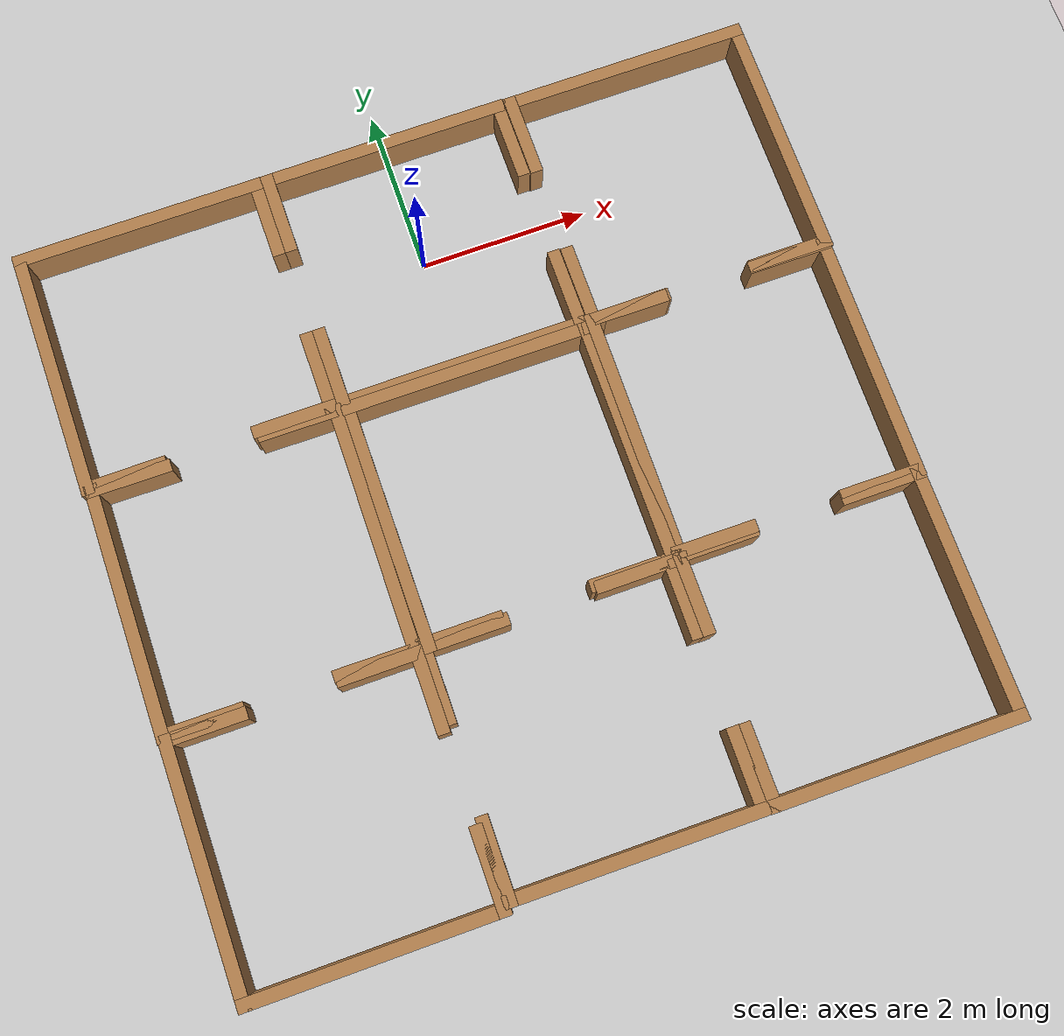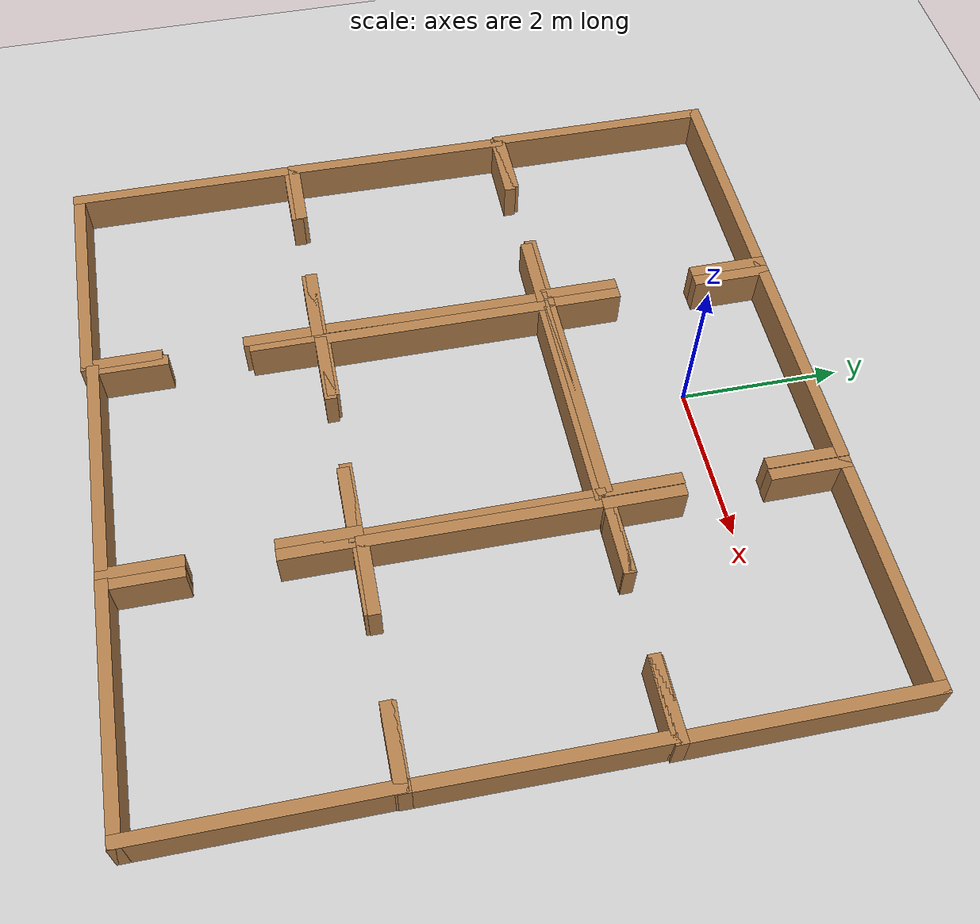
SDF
<sdf version="1.7">
 <world name="default">
  <light name="sun" type="directional">
   <pose>0 0 10 0 -0 0</pose>
   <diffuse>0.8 0.8 0.8 1</diffuse>
   <specular>0.2 0.2 0.2 1</specular>
   <attenuation>
    <range>1000</range>
    <constant>0.9</constant>
    <linear>0.01</linear>
    <quadratic>0.001</quadratic>
   </attenuation>
   <direction>-0.5 0.1 -0.9</direction>
   <spot><inner_angle>0</inner_angle><outer_angle>0</outer_angle><falloff>0</falloff></spot>
  </light>
  <model name="ground_plane">
   <static>1</static>
   <link name="link">
    <collision name="collision">
     <geometry><plane><normal>0 0 1</normal><size>100 100</size></plane></geometry>
     <surface>
      <contact><collide_bitmask>65535</collide_bitmask></contact>
      <friction><ode><mu>100</mu><mu2>50</mu2></ode></friction>
     </surface>
    </collision>
    <visual name="visual">
     <cast_shadows>0</cast_shadows>
     <geometry><plane><normal>0 0 1</normal><size>100 100</size></plane></geometry>
     <material>
      <script><uri>file://media/materials/scripts/gazebo.material</uri><name>Gazebo/Grey</name></script>
     </material>
    </visual>
   </link>
  </model>
  <physics type="ode">
   <real_time_update_rate>1000</real_time_update_rate>
   <max_step_size>0.001</max_step_size>
   <real_time_factor>1</real_time_factor>
   <ode>
    <solver>
     <type>quick</type>
     <iters>150</iters>
     <precon_iters>0</precon_iters>
     <sor>1.4</sor>
     <use_dynamic_moi_rescaling>1</use_dynamic_moi_rescaling>
    </solver>
    <constraints>
     <cfm>1e-05</cfm>
     <erp>0.2</erp>
     <contact_max_correcting_vel>2000</contact_max_correcting_vel>
     <contact_surface_layer>0.01</contact_surface_layer>
    </constraints>
   </ode>
  </physics>
  <model name="s_0_0">
   <link name="Wall_0">
    <collision name="Wall_0_Collision">
     <geometry><box><size>3 0.15 0.5</size></box></geometry>
     <pose>0 0 0.25 0 -0 0</pose>
    </collision>
    <visual name="Wall_0_Visual">
     <pose>0 0 0.25 0 -0 0</pose>
     <geometry><box><size>3 0.15 0.5</size></box></geometry>
     <material>
      <script><uri>file://media/materials/scripts/gazebo.material</uri><name>Gazebo/Wood</name></script>
      <ambient>1 1 1 1</ambient>
     </material>
    </visual>
    <pose>0 1.425 0 0 -0 0</pose>
   </link>
   <link name="Wall_2">
    <collision name="Wall_2_Collision">
     <geometry><box><size>1 0.15 0.5</size></box></geometry>
     <pose>0 0 0.25 0 -0 0</pose>
    </collision>
    <visual name="Wall_2_Visual">
     <pose>0 0 0.25 0 -0 0</pose>
     <geometry><box><size>1 0.15 0.5</size></box></geometry>
     <material>
      <script><uri>file://media/materials/scripts/gazebo.material</uri><name>Gazebo/Wood</name></script>
      <ambient>1 1 1 1</ambient>
     </material>
    </visual>
    <pose>-1.425 -1 0 0 0 -1.5708</pose>
   </link>
   <link name="Wall_2a">
    <collision name="Wall_2a_Collision">
     <geometry><box><size>1 0.15 0.5</size></box></geometry>
     <pose>0 0 0.25 0 -0 0</pose>
    </collision>
    <visual name="Wall_2a_Visual">
     <pose>0 0 0.25 0 -0 0</pose>
     <geometry><box><size>1 0.15 0.5</size></box></geometry>
     <material>
      <script><uri>file://media/materials/scripts/gazebo.material</uri><name>Gazebo/Wood</name></script>
      <ambient>1 1 1 1</ambient>
     </material>
    </visual>
    <pose>-1.425 1 0 0 0 -1.5708</pose>
   </link>
   <link name="Wall_3">
    <collision name="Wall_3_Collision">
     <geometry><box><size>3 0.15 0.5</size></box></geometry>
     <pose>0 0 0.25 0 -0 0</pose>
    </collision>
    <visual name="Wall_3_Visual">
     <pose>0 0 0.25 0 -0 0</pose>
     <geometry><box><size>3 0.15 0.5</size></box></geometry>
     <material>
      <script><uri>file://media/materials/scripts/gazebo.material</uri><name>Gazebo/Wood</name></script>
      <ambient>1 1 1 1</ambient>
     </material>
    </visual>
    <pose>0 -1.425 0 0 -0 0</pose>
   </link>
   <link name="Wall_4">
    <collision name="Wall_4_Collision">
     <geometry><box><size>1 0.15 0.5</size></box></geometry>
     <pose>0 0 0.25 0 -0 0</pose>
    </collision>
    <visual name="Wall_4_Visual">
     <pose>0 0 0.25 0 -0 0</pose>
     <geometry><box><size>1 0.15 0.5</size></box></geometry>
     <material>
      <script><uri>file://media/materials/scripts/gazebo.material</uri><name>Gazebo/Wood</name></script>
      <ambient>1 1 1 1</ambient>
     </material>
    </visual>
    <pose>1.425 -1 0 0 -0 1.5708</pose>
   </link>
   <link name="Wall_4a">
    <collision name="Wall_4a_Collision">
     <geometry><box><size>1 0.15 0.5</size></box></geometry>
     <pose>0 0 0.25 0 -0 0</pose>
    </collision>
    <visual name="Wall_4a_Visual">
     <pose>0 0 0.25 0 -0 0</pose>
     <geometry><box><size>1 0.15 0.5</size></box></geometry>
     <material>
      <script><uri>file://media/materials/scripts/gazebo.material</uri><name>Gazebo/Wood</name></script>
      <ambient>1 1 1 1</ambient>
     </material>
    </visual>
    <pose>1.425 1 0 0 -0 1.5708</pose>
   </link>
   <static>1</static>
  </model>
  <model name="s_6_0">
   <pose>3.00646 -0.009727 0 0 -0 3.14159</pose>
   <link name="Wall_0">
    <collision name="Wall_0_Collision">
     <geometry><box><size>1 0.15 0.5</size></box></geometry>
     <pose>0 0 0.25 0 -0 0</pose>
    </collision>
    <visual name="Wall_0_Visual">
     <pose>0 0 0.25 0 -0 0</pose>
     <geometry><box><size>1 0.15 0.5</size></box></geometry>
     <material>
      <script><uri>file://media/materials/scripts/gazebo.material</uri><name>Gazebo/Wood</name></script>
      <ambient>1 1 1 1</ambient>
     </material>
    </visual>
    <pose>-1 1.425 0 0 -0 0</pose>
   </link>
   <link name="Wall_0a">
    <collision name="Wall_0a_Collision">
     <geometry><box><size>1 0.15 0.5</size></box></geometry>
     <pose>0 0 0.25 0 -0 0</pose>
    </collision>
    <visual name="Wall_0a_Visual">
     <pose>0 0 0.25 0 -0 0</pose>
     <geometry><box><size>1 0.15 0.5</size></box></geometry>
     <material>
      <script><uri>file://media/materials/scripts/gazebo.material</uri><name>Gazebo/Wood</name></script>
      <ambient>1 1 1 1</ambient>
     </material>
    </visual>
    <pose>1 1.425 0 0 -0 0</pose>
   </link>
   <link name="Wall_2">
    <collision name="Wall_2_Collision">
     <geometry><box><size>3 0.15 0.5</size></box></geometry>
     <pose>0 0 0.25 0 -0 0</pose>
    </collision>
    <visual name="Wall_2_Visual">
     <pose>0 0 0.25 0 -0 0</pose>
     <geometry><box><size>3 0.15 0.5</size></box></geometry>
     <material>
      <script><uri>file://media/materials/scripts/gazebo.material</uri><name>Gazebo/Wood</name></script>
      <ambient>1 1 1 1</ambient>
     </material>
    </visual>
    <pose>-1.425 0 0 0 0 -1.5708</pose>
   </link>
   <link name="Wall_3">
    <collision name="Wall_3_Collision">
     <geometry><box><size>3 0.15 0.5</size></box></geometry>
     <pose>0 0 0.25 0 -0 0</pose>
    </collision>
    <visual name="Wall_3_Visual">
     <pose>0 0 0.25 0 -0 0</pose>
     <geometry><box><size>3 0.15 0.5</size></box></geometry>
     <material>
      <script><uri>file://media/materials/scripts/gazebo.material</uri><name>Gazebo/Wood</name></script>
      <ambient>1 1 1 1</ambient>
     </material>
    </visual>
    <pose>0 -1.425 0 0 -0 0</pose>
   </link>
   <link name="Wall_4">
    <collision name="Wall_4_Collision">
     <geometry><box><size>1 0.15 0.5</size></box></geometry>
     <pose>0 0 0.25 0 -0 0</pose>
    </collision>
    <visual name="Wall_4_Visual">
     <pose>0 0 0.25 0 -0 0</pose>
     <geometry><box><size>1 0.15 0.5</size></box></geometry>
     <material>
      <script><uri>file://media/materials/scripts/gazebo.material</uri><name>Gazebo/Wood</name></script>
      <ambient>1 1 1 1</ambient>
     </material>
    </visual>
    <pose>1.425 -1 0 0 -0 1.5708</pose>
   </link>
   <link name="Wall_4a">
    <collision name="Wall_4a_Collision">
     <geometry><box><size>1 0.15 0.5</size></box></geometry>
     <pose>0 0 0.25 0 -0 0</pose>
    </collision>
    <visual name="Wall_4a_Visual">
     <pose>0 0 0.25 0 -0 0</pose>
     <geometry><box><size>1 0.15 0.5</size></box></geometry>
     <material>
      <script><uri>file://media/materials/scripts/gazebo.material</uri><name>Gazebo/Wood</name></script>
      <ambient>1 1 1 1</ambient>
     </material>
    </visual>
    <pose>1.425 1 0 0 -0 1.5708</pose>
   </link>
   <static>1</static>
  </model>
  <model name="s_6_n9">
   <pose>2.94913 -5.75412 0 0 -0 1.5708</pose>
   <link name="Wall_0">
    <collision name="Wall_0_Collision">
     <geometry><box><size>1 0.15 0.5</size></box></geometry>
     <pose>0 0 0.25 0 -0 0</pose>
    </collision>
    <visual name="Wall_0_Visual">
     <pose>0 0 0.25 0 -0 0</pose>
     <geometry><box><size>1 0.15 0.5</size></box></geometry>
     <material>
      <script><uri>file://media/materials/scripts/gazebo.material</uri><name>Gazebo/Wood</name></script>
      <ambient>1 1 1 1</ambient>
     </material>
    </visual>
    <pose>-1 1.425 0 0 -0 0</pose>
   </link>
   <link name="Wall_0a">
    <collision name="Wall_0a_Collision">
     <geometry><box><size>1 0.15 0.5</size></box></geometry>
     <pose>0 0 0.25 0 -0 0</pose>
    </collision>
    <visual name="Wall_0a_Visual">
     <pose>0 0 0.25 0 -0 0</pose>
     <geometry><box><size>1 0.15 0.5</size></box></geometry>
     <material>
      <script><uri>file://media/materials/scripts/gazebo.material</uri><name>Gazebo/Wood</name></script>
      <ambient>1 1 1 1</ambient>
     </material>
    </visual>
    <pose>1 1.425 0 0 -0 0</pose>
   </link>
   <link name="Wall_2">
    <collision name="Wall_2_Collision">
     <geometry><box><size>3 0.15 0.5</size></box></geometry>
     <pose>0 0 0.25 0 -0 0</pose>
    </collision>
    <visual name="Wall_2_Visual">
     <pose>0 0 0.25 0 -0 0</pose>
     <geometry><box><size>3 0.15 0.5</size></box></geometry>
     <material>
      <script><uri>file://media/materials/scripts/gazebo.material</uri><name>Gazebo/Wood</name></script>
      <ambient>1 1 1 1</ambient>
     </material>
    </visual>
    <pose>-1.425 0 0 0 0 -1.5708</pose>
   </link>
   <link name="Wall_3">
    <collision name="Wall_3_Collision">
     <geometry><box><size>3 0.15 0.5</size></box></geometry>
     <pose>0 0 0.25 0 -0 0</pose>
    </collision>
    <visual name="Wall_3_Visual">
     <pose>0 0 0.25 0 -0 0</pose>
     <geometry><box><size>3 0.15 0.5</size></box></geometry>
     <material>
      <script><uri>file://media/materials/scripts/gazebo.material</uri><name>Gazebo/Wood</name></script>
      <ambient>1 1 1 1</ambient>
     </material>
    </visual>
    <pose>0 -1.425 0 0 -0 0</pose>
   </link>
   <link name="Wall_4">
    <collision name="Wall_4_Collision">
     <geometry><box><size>1 0.15 0.5</size></box></geometry>
     <pose>0 0 0.25 0 -0 0</pose>
    </collision>
    <visual name="Wall_4_Visual">
     <pose>0 0 0.25 0 -0 0</pose>
     <geometry><box><size>1 0.15 0.5</size></box></geometry>
     <material>
      <script><uri>file://media/materials/scripts/gazebo.material</uri><name>Gazebo/Wood</name></script>
      <ambient>1 1 1 1</ambient>
     </material>
    </visual>
    <pose>1.425 -1 0 0 -0 1.5708</pose>
   </link>
   <link name="Wall_4a">
    <collision name="Wall_4a_Collision">
     <geometry><box><size>1 0.15 0.5</size></box></geometry>
     <pose>0 0 0.25 0 -0 0</pose>
    </collision>
    <visual name="Wall_4a_Visual">
     <pose>0 0 0.25 0 -0 0</pose>
     <geometry><box><size>1 0.15 0.5</size></box></geometry>
     <material>
      <script><uri>file://media/materials/scripts/gazebo.material</uri><name>Gazebo/Wood</name></script>
      <ambient>1 1 1 1</ambient>
     </material>
    </visual>
    <pose>1.425 1 0 0 -0 1.5708</pose>
   </link>
   <static>1</static>
  </model>
  <model name="s_n3_n9">
   <pose>-2.97298 -5.80374 0 0 -0 0</pose>
   <link name="Wall_0">
    <collision name="Wall_0_Collision">
     <geometry><box><size>1 0.15 0.5</size></box></geometry>
     <pose>0 0 0.25 0 -0 0</pose>
    </collision>
    <visual name="Wall_0_Visual">
     <pose>0 0 0.25 0 -0 0</pose>
     <geometry><box><size>1 0.15 0.5</size></box></geometry>
     <material>
      <script><uri>file://media/materials/scripts/gazebo.material</uri><name>Gazebo/Wood</name></script>
      <ambient>1 1 1 1</ambient>
     </material>
    </visual>
    <pose>-1 1.425 0 0 -0 0</pose>
   </link>
   <link name="Wall_0a">
    <collision name="Wall_0a_Collision">
     <geometry><box><size>1 0.15 0.5</size></box></geometry>
     <pose>0 0 0.25 0 -0 0</pose>
    </collision>
    <visual name="Wall_0a_Visual">
     <pose>0 0 0.25 0 -0 0</pose>
     <geometry><box><size>1 0.15 0.5</size></box></geometry>
     <material>
      <script><uri>file://media/materials/scripts/gazebo.material</uri><name>Gazebo/Wood</name></script>
      <ambient>1 1 1 1</ambient>
     </material>
    </visual>
    <pose>1 1.425 0 0 -0 0</pose>
   </link>
   <link name="Wall_2">
    <collision name="Wall_2_Collision">
     <geometry><box><size>3 0.15 0.5</size></box></geometry>
     <pose>0 0 0.25 0 -0 0</pose>
    </collision>
    <visual name="Wall_2_Visual">
     <pose>0 0 0.25 0 -0 0</pose>
     <geometry><box><size>3 0.15 0.5</size></box></geometry>
     <material>
      <script><uri>file://media/materials/scripts/gazebo.material</uri><name>Gazebo/Wood</name></script>
      <ambient>1 1 1 1</ambient>
     </material>
    </visual>
    <pose>-1.425 0 0 0 0 -1.5708</pose>
   </link>
   <link name="Wall_3">
    <collision name="Wall_3_Collision">
     <geometry><box><size>3 0.15 0.5</size></box></geometry>
     <pose>0 0 0.25 0 -0 0</pose>
    </collision>
    <visual name="Wall_3_Visual">
     <pose>0 0 0.25 0 -0 0</pose>
     <geometry><box><size>3 0.15 0.5</size></box></geometry>
     <material>
      <script><uri>file://media/materials/scripts/gazebo.material</uri><name>Gazebo/Wood</name></script>
      <ambient>1 1 1 1</ambient>
     </material>
    </visual>
    <pose>0 -1.425 0 0 -0 0</pose>
   </link>
   <link name="Wall_4">
    <collision name="Wall_4_Collision">
     <geometry><box><size>1 0.15 0.5</size></box></geometry>
     <pose>0 0 0.25 0 -0 0</pose>
    </collision>
    <visual name="Wall_4_Visual">
     <pose>0 0 0.25 0 -0 0</pose>
     <geometry><box><size>1 0.15 0.5</size></box></geometry>
     <material>
      <script><uri>file://media/materials/scripts/gazebo.material</uri><name>Gazebo/Wood</name></script>
      <ambient>1 1 1 1</ambient>
     </material>
    </visual>
    <pose>1.425 -1 0 0 -0 1.5708</pose>
   </link>
   <link name="Wall_4a">
    <collision name="Wall_4a_Collision">
     <geometry><box><size>1 0.15 0.5</size></box></geometry>
     <pose>0 0 0.25 0 -0 0</pose>
    </collision>
    <visual name="Wall_4a_Visual">
     <pose>0 0 0.25 0 -0 0</pose>
     <geometry><box><size>1 0.15 0.5</size></box></geometry>
     <material>
      <script><uri>file://media/materials/scripts/gazebo.material</uri><name>Gazebo/Wood</name></script>
      <ambient>1 1 1 1</ambient>
     </material>
    </visual>
    <pose>1.425 1 0 0 -0 1.5708</pose>
   </link>
   <static>1</static>
  </model>
  <model name="s_n3_0">
   <pose>-3 5e-06 0 0 0 -1.5708</pose>
   <link name="Wall_0">
    <collision name="Wall_0_Collision">
     <geometry><box><size>1 0.15 0.5</size></box></geometry>
     <pose>0 0 0.25 0 -0 0</pose>
    </collision>
    <visual name="Wall_0_Visual">
     <pose>0 0 0.25 0 -0 0</pose>
     <geometry><box><size>1 0.15 0.5</size></box></geometry>
     <material>
      <script><uri>file://media/materials/scripts/gazebo.material</uri><name>Gazebo/Wood</name></script>
      <ambient>1 1 1 1</ambient>
     </material>
    </visual>
    <pose>-1 1.425 0 0 -0 0</pose>
   </link>
   <link name="Wall_0a">
    <collision name="Wall_0a_Collision">
     <geometry><box><size>1 0.15 0.5</size></box></geometry>
     <pose>0 0 0.25 0 -0 0</pose>
    </collision>
    <visual name="Wall_0a_Visual">
     <pose>0 0 0.25 0 -0 0</pose>
     <geometry><box><size>1 0.15 0.5</size></box></geometry>
     <material>
      <script><uri>file://media/materials/scripts/gazebo.material</uri><name>Gazebo/Wood</name></script>
      <ambient>1 1 1 1</ambient>
     </material>
    </visual>
    <pose>1 1.425 0 0 -0 0</pose>
   </link>
   <link name="Wall_2">
    <collision name="Wall_2_Collision">
     <geometry><box><size>3 0.15 0.5</size></box></geometry>
     <pose>0 0 0.25 0 -0 0</pose>
    </collision>
    <visual name="Wall_2_Visual">
     <pose>0 0 0.25 0 -0 0</pose>
     <geometry><box><size>3 0.15 0.5</size></box></geometry>
     <material>
      <script><uri>file://media/materials/scripts/gazebo.material</uri><name>Gazebo/Wood</name></script>
      <ambient>1 1 1 1</ambient>
     </material>
    </visual>
    <pose>-1.425 0 0 0 0 -1.5708</pose>
   </link>
   <link name="Wall_3">
    <collision name="Wall_3_Collision">
     <geometry><box><size>3 0.15 0.5</size></box></geometry>
     <pose>0 0 0.25 0 -0 0</pose>
    </collision>
    <visual name="Wall_3_Visual">
     <pose>0 0 0.25 0 -0 0</pose>
     <geometry><box><size>3 0.15 0.5</size></box></geometry>
     <material>
      <script><uri>file://media/materials/scripts/gazebo.material</uri><name>Gazebo/Wood</name></script>
      <ambient>1 1 1 1</ambient>
     </material>
    </visual>
    <pose>0 -1.425 0 0 -0 0</pose>
   </link>
   <link name="Wall_4">
    <collision name="Wall_4_Collision">
     <geometry><box><size>1 0.15 0.5</size></box></geometry>
     <pose>0 0 0.25 0 -0 0</pose>
    </collision>
    <visual name="Wall_4_Visual">
     <pose>0 0 0.25 0 -0 0</pose>
     <geometry><box><size>1 0.15 0.5</size></box></geometry>
     <material>
      <script><uri>file://media/materials/scripts/gazebo.material</uri><name>Gazebo/Wood</name></script>
      <ambient>1 1 1 1</ambient>
     </material>
    </visual>
    <pose>1.425 -1 0 0 -0 1.5708</pose>
   </link>
   <link name="Wall_4a">
    <collision name="Wall_4a_Collision">
     <geometry><box><size>1 0.15 0.5</size></box></geometry>
     <pose>0 0 0.25 0 -0 0</pose>
    </collision>
    <visual name="Wall_4a_Visual">
     <pose>0 0 0.25 0 -0 0</pose>
     <geometry><box><size>1 0.15 0.5</size></box></geometry>
     <material>
      <script><uri>file://media/materials/scripts/gazebo.material</uri><name>Gazebo/Wood</name></script>
      <ambient>1 1 1 1</ambient>
     </material>
    </visual>
    <pose>1.425 1 0 0 -0 1.5708</pose>
   </link>
   <static>1</static>
  </model>
  <scene><ambient>0.4 0.4 0.4 1</ambient><background>0.7 0.7 0.7 1</background><shadows>1</shadows></scene>
  <gravity>0 0 -9.8</gravity>
  <magnetic_field>6e-06 2.3e-05 -4.2e-05</magnetic_field>
  <atmosphere type="adiabatic"/>
  <spherical_coordinates>
   <surface_model>EARTH_WGS84</surface_model>
   <latitude_deg>0</latitude_deg>
   <longitude_deg>0</longitude_deg>
   <elevation>0</elevation>
   <heading_deg>0</heading_deg>
  </spherical_coordinates>
  <model name="square_3_d">
   <pose>0.02531 -2.9285 0 0 0 -1.5719</pose>
   <link name="Wall_0">
    <collision name="Wall_0_Collision">
     <geometry><box><size>3 0.15 0.5</size></box></geometry>
     <pose>0 0 0.25 0 -0 0</pose>
    </collision>
    <visual name="Wall_0_Visual">
     <pose>0 0 0.25 0 -0 0</pose>
     <geometry><box><size>3 0.15 0.5</size></box></geometry>
     <material>
      <script><uri>file://media/materials/scripts/gazebo.material</uri><name>Gazebo/Wood</name></script>
      <ambient>1 1 1 1</ambient>
     </material>
    </visual>
    <pose>0 1.425 0 0 -0 0</pose>
   </link>
   <link name="Wall_2">
    <collision name="Wall_2_Collision">
     <geometry><box><size>3 0.15 0.5</size></box></geometry>
     <pose>0 0 0.25 0 -0 0</pose>
    </collision>
    <visual name="Wall_2_Visual">
     <pose>0 0 0.25 0 -0 0</pose>
     <geometry><box><size>3 0.15 0.5</size></box></geometry>
     <material>
      <script><uri>file://media/materials/scripts/gazebo.material</uri><name>Gazebo/Wood</name></script>
      <ambient>1 1 1 1</ambient>
     </material>
    </visual>
    <pose>-1.425 0 0 0 0 -1.5708</pose>
   </link>
   <link name="Wall_3">
    <collision name="Wall_3_Collision">
     <geometry><box><size>3 0.15 0.5</size></box></geometry>
     <pose>0 0 0.25 0 -0 0</pose>
    </collision>
    <visual name="Wall_3_Visual">
     <pose>0 0 0.25 0 -0 0</pose>
     <geometry><box><size>3 0.15 0.5</size></box></geometry>
     <material>
      <script><uri>file://media/materials/scripts/gazebo.material</uri><name>Gazebo/Wood</name></script>
      <ambient>1 1 1 1</ambient>
     </material>
    </visual>
    <pose>0 -1.425 0 0 -0 0</pose>
   </link>
   <link name="Wall_4">
    <collision name="Wall_4_Collision">
     <geometry><box><size>1 0.15 0.5</size></box></geometry>
     <pose>0 0 0.25 0 -0 0</pose>
    </collision>
    <visual name="Wall_4_Visual">
     <pose>0 0 0.25 0 -0 0</pose>
     <geometry><box><size>1 0.15 0.5</size></box></geometry>
     <material>
      <script><uri>file://media/materials/scripts/gazebo.material</uri><name>Gazebo/Wood</name></script>
      <ambient>1 1 1 1</ambient>
     </material>
    </visual>
    <pose>1.425 -1 0 0 -0 1.5708</pose>
   </link>
   <link name="Wall_4a">
    <collision name="Wall_4_Collision">
     <geometry><box><size>1 0.15 0.5</size></box></geometry>
     <pose>0 0 0.25 0 -0 0</pose>
    </collision>
    <visual name="Wall_4a_Visual">
     <pose>0 0 0.25 0 -0 0</pose>
     <geometry><box><size>1 0.15 0.5</size></box></geometry>
     <material>
      <script><uri>file://media/materials/scripts/gazebo.material</uri><name>Gazebo/Wood</name></script>
      <ambient>1 1 1 1</ambient>
     </material>
    </visual>
    <pose>1.425 1 0 0 -0 1.5708</pose>
   </link>
   <static>1</static>
  </model>
  <model name="s_0_0_clone">
   <pose>2.97003 -2.86922 0 0 0 -1.57826</pose>
   <link name="Wall_0">
    <collision name="Wall_0_Collision">
     <geometry><box><size>3 0.15 0.5</size></box></geometry>
     <pose>0 0 0.25 0 -0 0</pose>
    </collision>
    <visual name="Wall_0_Visual">
     <pose>0 0 0.25 0 -0 0</pose>
     <geometry><box><size>3 0.15 0.5</size></box></geometry>
     <material>
      <script><uri>file://media/materials/scripts/gazebo.material</uri><name>Gazebo/Wood</name></script>
      <ambient>1 1 1 1</ambient>
     </material>
    </visual>
    <pose>0 1.425 0 0 -0 0</pose>
   </link>
   <link name="Wall_2">
    <collision name="Wall_2_Collision">
     <geometry><box><size>1 0.15 0.5</size></box></geometry>
     <pose>0 0 0.25 0 -0 0</pose>
    </collision>
    <visual name="Wall_2_Visual">
     <pose>0 0 0.25 0 -0 0</pose>
     <geometry><box><size>1 0.15 0.5</size></box></geometry>
     <material>
      <script><uri>file://media/materials/scripts/gazebo.material</uri><name>Gazebo/Wood</name></script>
      <ambient>1 1 1 1</ambient>
     </material>
    </visual>
    <pose>-1.425 -1 0 0 0 -1.5708</pose>
   </link>
   <link name="Wall_2a">
    <collision name="Wall_2a_Collision">
     <geometry><box><size>1 0.15 0.5</size></box></geometry>
     <pose>0 0 0.25 0 -0 0</pose>
    </collision>
    <visual name="Wall_2a_Visual">
     <pose>0 0 0.25 0 -0 0</pose>
     <geometry><box><size>1 0.15 0.5</size></box></geometry>
     <material>
      <script><uri>file://media/materials/scripts/gazebo.material</uri><name>Gazebo/Wood</name></script>
      <ambient>1 1 1 1</ambient>
     </material>
    </visual>
    <pose>-1.425 1 0 0 0 -1.5708</pose>
   </link>
   <link name="Wall_3">
    <collision name="Wall_3_Collision">
     <geometry><box><size>3 0.15 0.5</size></box></geometry>
     <pose>0 0 0.25 0 -0 0</pose>
    </collision>
    <visual name="Wall_3_Visual">
     <pose>0 0 0.25 0 -0 0</pose>
     <geometry><box><size>3 0.15 0.5</size></box></geometry>
     <material>
      <script><uri>file://media/materials/scripts/gazebo.material</uri><name>Gazebo/Wood</name></script>
      <ambient>1 1 1 1</ambient>
     </material>
    </visual>
    <pose>0 -1.425 0 0 -0 0</pose>
   </link>
   <link name="Wall_4">
    <collision name="Wall_4_Collision">
     <geometry><box><size>1 0.15 0.5</size></box></geometry>
     <pose>0 0 0.25 0 -0 0</pose>
    </collision>
    <visual name="Wall_4_Visual">
     <pose>0 0 0.25 0 -0 0</pose>
     <geometry><box><size>1 0.15 0.5</size></box></geometry>
     <material>
      <script><uri>file://media/materials/scripts/gazebo.material</uri><name>Gazebo/Wood</name></script>
      <ambient>1 1 1 1</ambient>
     </material>
    </visual>
    <pose>1.425 -1 0 0 -0 1.5708</pose>
   </link>
   <link name="Wall_4a">
    <collision name="Wall_4a_Collision">
     <geometry><box><size>1 0.15 0.5</size></box></geometry>
     <pose>0 0 0.25 0 -0 0</pose>
    </collision>
    <visual name="Wall_4a_Visual">
     <pose>0 0 0.25 0 -0 0</pose>
     <geometry><box><size>1 0.15 0.5</size></box></geometry>
     <material>
      <script><uri>file://media/materials/scripts/gazebo.material</uri><name>Gazebo/Wood</name></script>
      <ambient>1 1 1 1</ambient>
     </material>
    </visual>
    <pose>1.425 1 0 0 -0 1.5708</pose>
   </link>
   <static>1</static>
  </model>
  <model name="s_0_0_clone_clone">
   <pose>-2.97275 -2.90369 0 0 0 -1.57826</pose>
   <link name="Wall_0">
    <collision name="Wall_0_Collision">
     <geometry><box><size>3 0.15 0.5</size></box></geometry>
     <pose>0 0 0.25 0 -0 0</pose>
    </collision>
    <visual name="Wall_0_Visual">
     <pose>0 0 0.25 0 -0 0</pose>
     <geometry><box><size>3 0.15 0.5</size></box></geometry>
     <material>
      <script><uri>file://media/materials/scripts/gazebo.material</uri><name>Gazebo/Wood</name></script>
      <ambient>1 1 1 1</ambient>
     </material>
    </visual>
    <pose>0 1.425 0 0 -0 0</pose>
   </link>
   <link name="Wall_2">
    <collision name="Wall_2_Collision">
     <geometry><box><size>1 0.15 0.5</size></box></geometry>
     <pose>0 0 0.25 0 -0 0</pose>
    </collision>
    <visual name="Wall_2_Visual">
     <pose>0 0 0.25 0 -0 0</pose>
     <geometry><box><size>1 0.15 0.5</size></box></geometry>
     <material>
      <script><uri>file://media/materials/scripts/gazebo.material</uri><name>Gazebo/Wood</name></script>
      <ambient>1 1 1 1</ambient>
     </material>
    </visual>
    <pose>-1.425 -1 0 0 0 -1.5708</pose>
   </link>
   <link name="Wall_2a">
    <collision name="Wall_2a_Collision">
     <geometry><box><size>1 0.15 0.5</size></box></geometry>
     <pose>0 0 0.25 0 -0 0</pose>
    </collision>
    <visual name="Wall_2a_Visual">
     <pose>0 0 0.25 0 -0 0</pose>
     <geometry><box><size>1 0.15 0.5</size></box></geometry>
     <material>
      <script><uri>file://media/materials/scripts/gazebo.material</uri><name>Gazebo/Wood</name></script>
      <ambient>1 1 1 1</ambient>
     </material>
    </visual>
    <pose>-1.425 1 0 0 0 -1.5708</pose>
   </link>
   <link name="Wall_3">
    <collision name="Wall_3_Collision">
     <geometry><box><size>3 0.15 0.5</size></box></geometry>
     <pose>0 0 0.25 0 -0 0</pose>
    </collision>
    <visual name="Wall_3_Visual">
     <pose>0 0 0.25 0 -0 0</pose>
     <geometry><box><size>3 0.15 0.5</size></box></geometry>
     <material>
      <script><uri>file://media/materials/scripts/gazebo.material</uri><name>Gazebo/Wood</name></script>
      <ambient>1 1 1 1</ambient>
     </material>
    </visual>
    <pose>0 -1.425 0 0 -0 0</pose>
   </link>
   <link name="Wall_4">
    <collision name="Wall_4_Collision">
     <geometry><box><size>1 0.15 0.5</size></box></geometry>
     <pose>0 0 0.25 0 -0 0</pose>
    </collision>
    <visual name="Wall_4_Visual">
     <pose>0 0 0.25 0 -0 0</pose>
     <geometry><box><size>1 0.15 0.5</size></box></geometry>
     <material>
      <script><uri>file://media/materials/scripts/gazebo.material</uri><name>Gazebo/Wood</name></script>
      <ambient>1 1 1 1</ambient>
     </material>
    </visual>
    <pose>1.425 -1 0 0 -0 1.5708</pose>
   </link>
   <link name="Wall_4a">
    <collision name="Wall_4a_Collision">
     <geometry><box><size>1 0.15 0.5</size></box></geometry>
     <pose>0 0 0.25 0 -0 0</pose>
    </collision>
    <visual name="Wall_4a_Visual">
     <pose>0 0 0.25 0 -0 0</pose>
     <geometry><box><size>1 0.15 0.5</size></box></geometry>
     <material>
      <script><uri>file://media/materials/scripts/gazebo.material</uri><name>Gazebo/Wood</name></script>
      <ambient>1 1 1 1</ambient>
     </material>
    </visual>
    <pose>1.425 1 0 0 -0 1.5708</pose>
   </link>
   <static>1</static>
  </model>
  <model name="square_3_t_0">
   <pose>-0.031444 -5.74372 0 0 0 -1.57549</pose>
   <link name="Wall_0">
    <collision name="Wall_0_Collision">
     <geometry><box><size>1 0.15 0.5</size></box></geometry>
     <pose>0 0 0.25 0 -0 0</pose>
    </collision>
    <visual name="Wall_0_Visual">
     <pose>0 0 0.25 0 -0 0</pose>
     <geometry><box><size>1 0.15 0.5</size></box></geometry>
     <material>
      <script><uri>file://media/materials/scripts/gazebo.material</uri><name>Gazebo/Wood</name></script>
      <ambient>1 1 1 1</ambient>
     </material>
    </visual>
    <pose>-1 1.425 0 0 -0 0</pose>
   </link>
   <link name="Wall_0a">
    <collision name="Wall_0a_Collision">
     <geometry><box><size>1 0.15 0.5</size></box></geometry>
     <pose>0 0 0.25 0 -0 0</pose>
    </collision>
    <visual name="Wall_0a_Visual">
     <pose>0 0 0.25 0 -0 0</pose>
     <geometry><box><size>1 0.15 0.5</size></box></geometry>
     <material>
      <script><uri>file://media/materials/scripts/gazebo.material</uri><name>Gazebo/Wood</name></script>
      <ambient>1 1 1 1</ambient>
     </material>
    </visual>
    <pose>1 1.425 0 0 -0 0</pose>
   </link>
   <link name="Wall_2">
    <collision name="Wall_2_Collision">
     <geometry><box><size>1 0.15 0.5</size></box></geometry>
     <pose>0 0 0.25 0 -0 0</pose>
    </collision>
    <visual name="Wall_2_Visual">
     <pose>0 0 0.25 0 -0 0</pose>
     <geometry><box><size>1 0.15 0.5</size></box></geometry>
     <material>
      <script><uri>file://media/materials/scripts/gazebo.material</uri><name>Gazebo/Wood</name></script>
      <ambient>1 1 1 1</ambient>
     </material>
    </visual>
    <pose>-1.425 -1 0 0 0 -1.5708</pose>
   </link>
   <link name="Wall_2a">
    <collision name="Wall_2a_Collision">
     <geometry><box><size>1 0.15 0.5</size></box></geometry>
     <pose>0 0 0.25 0 -0 0</pose>
    </collision>
    <visual name="Wall_2a_Visual">
     <pose>0 0 0.25 0 -0 0</pose>
     <geometry><box><size>1 0.15 0.5</size></box></geometry>
     <material>
      <script><uri>file://media/materials/scripts/gazebo.material</uri><name>Gazebo/Wood</name></script>
      <ambient>1 1 1 1</ambient>
     </material>
    </visual>
    <pose>-1.425 1 0 0 0 -1.5708</pose>
   </link>
   <link name="Wall_3">
    <collision name="Wall_3_Collision">
     <geometry><box><size>1 0.15 0.5</size></box></geometry>
     <pose>0 0 0.25 0 -0 0</pose>
    </collision>
    <visual name="Wall_3_Visual">
     <pose>0 0 0.25 0 -0 0</pose>
     <geometry><box><size>1 0.15 0.5</size></box></geometry>
     <material>
      <script><uri>file://media/materials/scripts/gazebo.material</uri><name>Gazebo/Wood</name></script>
      <ambient>1 1 1 1</ambient>
     </material>
    </visual>
    <pose>-1 -1.425 0 0 -0 0</pose>
   </link>
   <link name="Wall_3a">
    <collision name="Wall_3a_Collision">
     <geometry><box><size>1 0.15 0.5</size></box></geometry>
     <pose>0 0 0.25 0 -0 0</pose>
    </collision>
    <visual name="Wall_3a_Visual">
     <pose>0 0 0.25 0 -0 0</pose>
     <geometry><box><size>1 0.15 0.5</size></box></geometry>
     <material>
      <script><uri>file://media/materials/scripts/gazebo.material</uri><name>Gazebo/Wood</name></script>
      <ambient>1 1 1 1</ambient>
     </material>
    </visual>
    <pose>1 -1.425 0 0 -0 0</pose>
   </link>
   <link name="Wall_4">
    <collision name="Wall_4_Collision">
     <geometry><box><size>3 0.15 0.5</size></box></geometry>
     <pose>0 0 0.25 0 -0 0</pose>
    </collision>
    <visual name="Wall_4_Visual">
     <pose>0 0 0.25 0 -0 0</pose>
     <geometry><box><size>3 0.15 0.5</size></box></geometry>
     <material>
      <script><uri>file://media/materials/scripts/gazebo.material</uri><name>Gazebo/Wood</name></script>
      <ambient>1 1 1 1</ambient>
     </material>
    </visual>
    <pose>1.425 0 0 0 -0 1.5708</pose>
   </link>
   <static>1</static>
  </model>
 </world>
</sdf>
